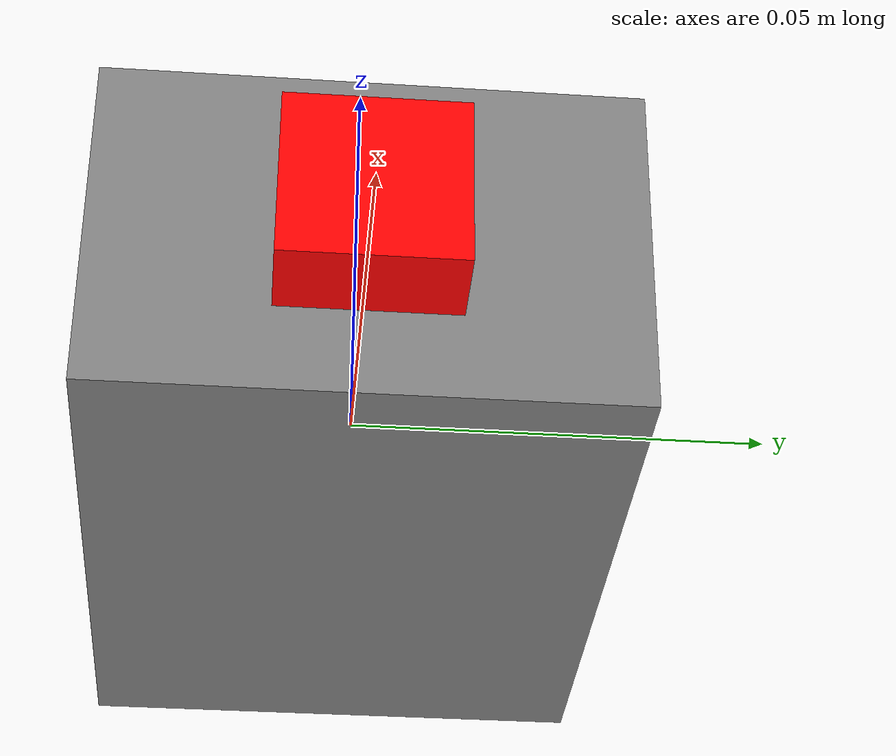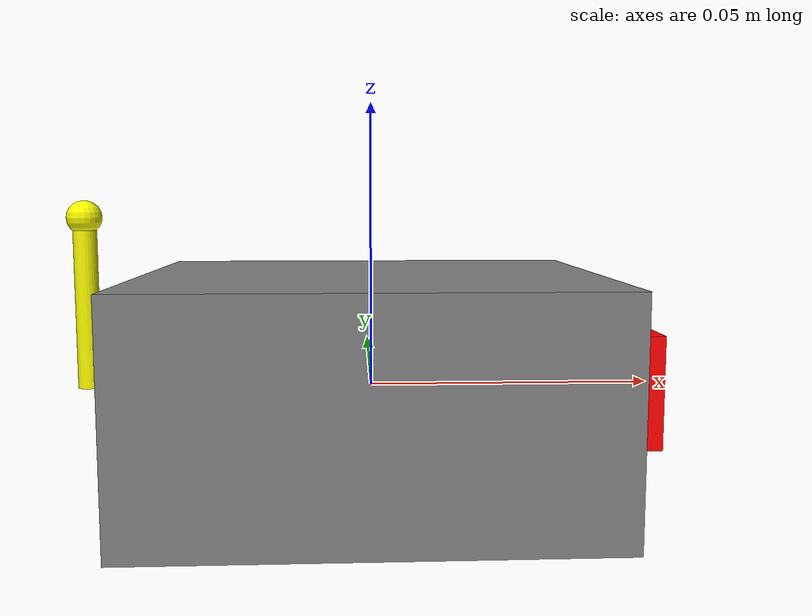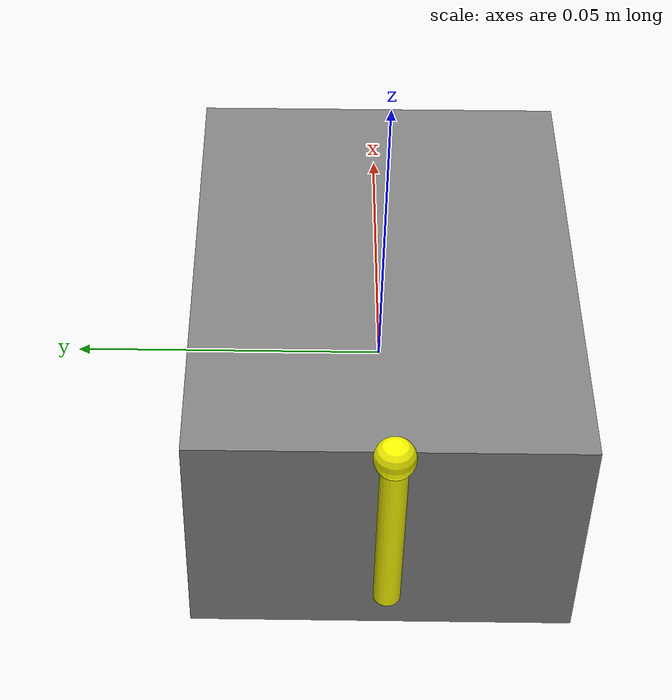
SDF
<?xml version="1.0"?>
<sdf version="1.6">
  <model name="world_camera">
    <pose>0 0 0 0 0 0</pose>
    <static>true</static>
    <link name="camera_link">
      <!-- 相机主体 - 梯台形状 -->
      <visual name="camera_body">
        <pose>0 0 0 0 0 0</pose>
        <geometry>
          <box>
            <size>0.08 0.06 0.04</size>
          </box>
        </geometry>
        <material>
          <ambient>0.5 0.5 0.5 1</ambient>
          <diffuse>0.5 0.5 0.5 1</diffuse>
        </material>
      </visual>

      <!-- 镜头部分 - 沿X轴正方向（红色箭头方向） -->
      <visual name="camera_lens">
        <pose>0.025 0 0 0 1.5708 0</pose>
        <geometry>
          <cylinder>
            <radius>0.015</radius>
            <length>0.01</length>
          </cylinder>
        </geometry>
        <material>
          <ambient>0 0 1 1</ambient>
          <diffuse>0 0 1 1</diffuse>
        </material>
      </visual>

      <!-- 镜头方向箭头 - 红色指示镜头朝向X轴正方向 -->
      <visual name="direction_arrow">
        <pose>0.04 0 0 0 0 0</pose>
        <geometry>
          <box>
            <size>0.02 0.02 0.02</size>
          </box>
        </geometry>
        <material>
          <ambient>1 0 0 1</ambient>
          <diffuse>1 0 0 1</diffuse>
        </material>
      </visual>

      <!-- 正面指示天线 - 黄色，在相机背后沿Z轴向上 -->
      <visual name="antenna">
        <pose>-0.05 0 0.015 0 0 0</pose>
        <geometry>
          <cylinder>
            <radius>0.002</radius>
            <length>0.03</length>
          </cylinder>
        </geometry>
        <material>
          <ambient>1 1 0 1</ambient>
          <diffuse>1 1 0 1</diffuse>
        </material>
      </visual>

      <!-- 天线顶部小球 -->
      <visual name="antenna_tip">
        <pose>-0.05 0 0.03 0 0 0</pose>
        <geometry>
          <sphere>
            <radius>0.003</radius>
          </sphere>
        </geometry>
        <material>
          <ambient>1 1 0 1</ambient>
          <diffuse>1 1 0 1</diffuse>
        </material>
      </visual>

      <collision name="collision">
        <geometry>
          <box>
            <size>0.08 0.06 0.04</size>
          </box>
        </geometry>
      </collision>

      <sensor name="depth_camera" type="depth">
        <always_on>true</always_on>
        <update_rate>30.0</update_rate>
        <visualize>true</visualize>
        <camera>
          <horizontal_fov>1.047198</horizontal_fov>
          <image>
            <width>640</width>
            <height>480</height>
            <format>R8G8B8</format>
          </image>
          <clip>
            <near>0.05</near>
            <far>10</far>
          </clip>
        </camera>
        <plugin name="camera_controller" filename="libgazebo_ros_camera.so">
          <ros>
            <namespace>world_camera</namespace>
          </ros>
          <camera_name>world_camera</camera_name>
          <frame_name>world_camera_optical_frame</frame_name>
        </plugin>
      </sensor>
    </link>
  </model>
</sdf>
